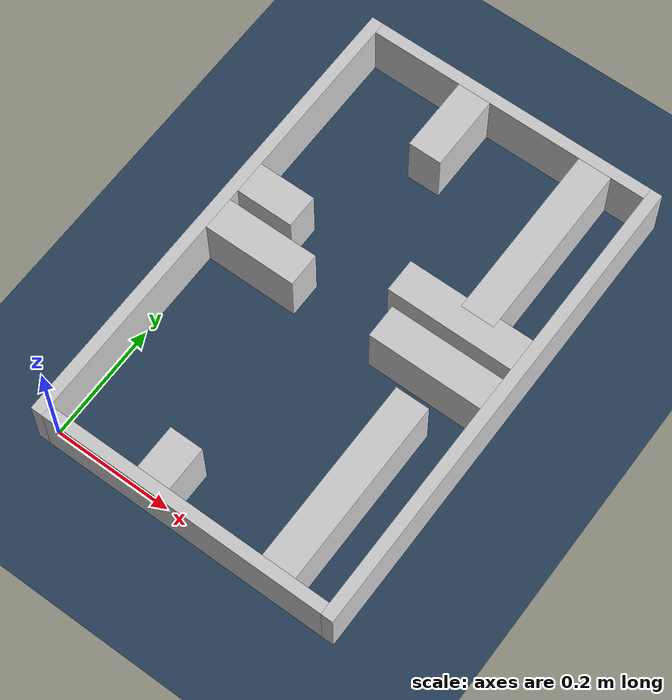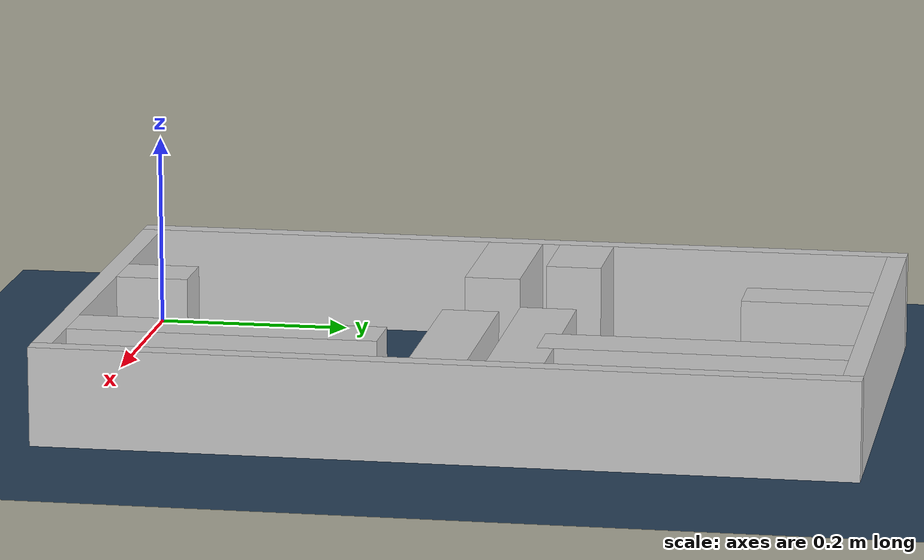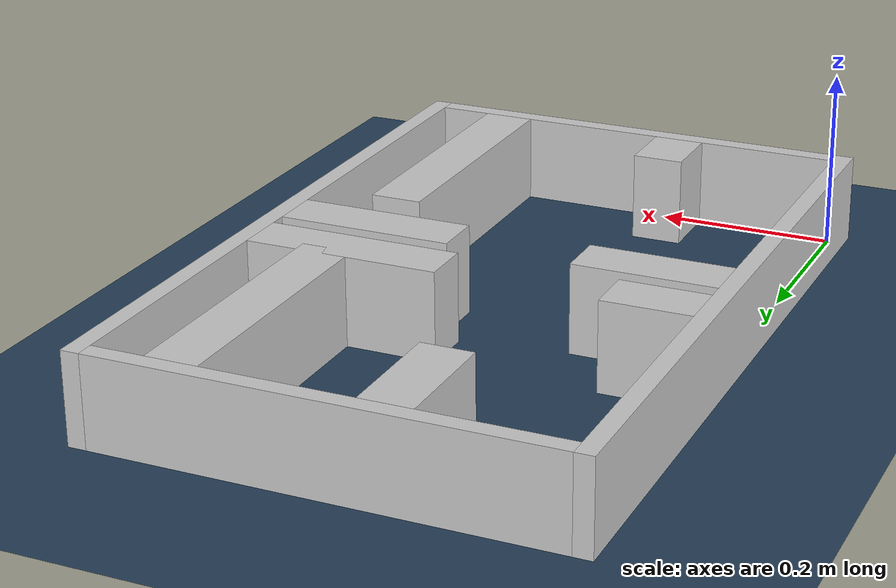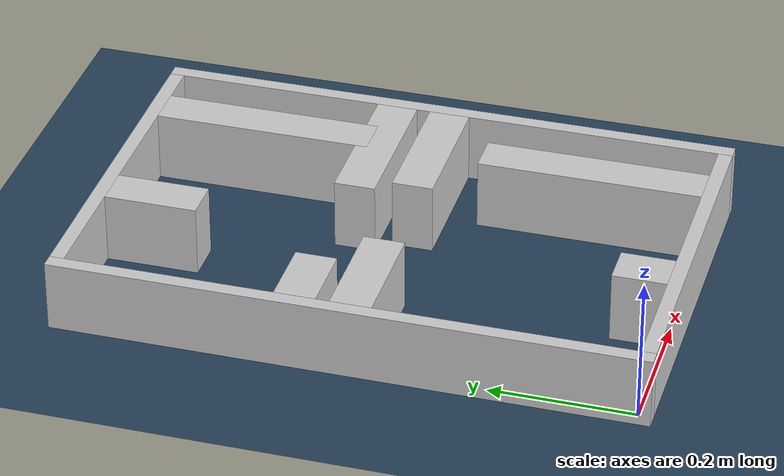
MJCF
<?xml version="1.0" ?>
<mujoco model="generated_real_template">
  <compiler angle="degree"/>
  <option timestep="0.002" integrator="implicitfast" iterations="100" cone="elliptic"/>
  <default>
    <geom density="1"/>
  </default>
  <asset>
    <texture builtin="gradient" height="3072" rgb1="0.3 0.5 0.7" rgb2="0 0 0" type="skybox" width="512"/>
    <texture builtin="checker" height="300" mark="edge" markrgb="0.8 0.8 0.8" name="groundplane" rgb1="0.2 0.3 0.4" rgb2="0.1 0.2 0.3" type="2d" width="300"/>
    <material name="groundplane" reflectance="0.2" texrepeat="5 5" texture="groundplane" texuniform="true"/>
  </asset>
  <worldbody>
    <light dir="0 0 -1" directional="true" pos="0 0 1.5"/>
    <geom name="floor" type="plane" condim="4" friction="0.5 0.005 0.001" material="groundplane" size="0 0 0.05"/>
    <body name="walls">
      <geom name="wall_boundary_left" type="box" condim="4" friction="1.0 0.005 0.0001" rgba="0.8 0.8 0.8 1" pos="-0.010000 0.387500 0.050000" euler="0 0 0.000000" size="0.010000 0.407500 0.050000"/>
      <geom name="wall_boundary_right" type="box" condim="4" friction="1.0 0.005 0.0001" rgba="0.8 0.8 0.8 1" pos="0.500000 0.387500 0.050000" euler="0 0 0.000000" size="0.010000 0.407500 0.050000"/>
      <geom name="wall_boundary_bottom" type="box" condim="4" friction="1.0 0.005 0.0001" rgba="0.8 0.8 0.8 1" pos="0.245000 -0.010000 0.050000" euler="0 0 0.000000" size="0.245000 0.010000 0.050000"/>
      <geom name="wall_boundary_top" type="box" condim="4" friction="1.0 0.005 0.0001" rgba="0.8 0.8 0.8 1" pos="0.245000 0.785000 0.050000" euler="0 0 0.000000" size="0.245000 0.010000 0.050000"/>
      <geom name="wall_inner_1_1" type="box" condim="4" friction="1.0 0.005 0.0001" rgba="0.8 0.8 0.8 1" pos="0.079074 0.382790 0.050000" euler="0 0 0.000000" size="0.079074 0.028500 0.050000"/>
      <geom name="wall_inner_1_2" type="box" condim="4" friction="1.0 0.005 0.0001" rgba="0.8 0.8 0.8 1" pos="0.392958 0.382790 0.050000" euler="0 0 0.000000" size="0.097042 0.028500 0.050000"/>
      <geom name="wall_inner_2_1" type="box" condim="4" friction="1.0 0.005 0.0001" rgba="0.8 0.8 0.8 1" pos="0.048938 0.458340 0.050000" euler="0 0 0.000000" size="0.048938 0.028500 0.050000"/>
      <geom name="wall_inner_2_2" type="box" condim="4" friction="1.0 0.005 0.0001" rgba="0.8 0.8 0.8 1" pos="0.382150 0.458340 0.050000" euler="0 0 0.000000" size="0.107850 0.028500 0.050000"/>
      <geom name="wall_inner_3_1" type="box" condim="4" friction="1.0 0.005 0.0001" rgba="0.8 0.8 0.8 1" pos="0.185189 0.037176 0.050000" euler="0 0 90.000000" size="0.037176 0.028500 0.050000"/>
      <geom name="wall_inner_3_2" type="box" condim="4" friction="1.0 0.005 0.0001" rgba="0.8 0.8 0.8 1" pos="0.185189 0.710385 0.050000" euler="0 0 90.000000" size="0.064615 0.028500 0.050000"/>
      <geom name="wall_inner_4_1" type="box" condim="4" friction="1.0 0.005 0.0001" rgba="0.8 0.8 0.8 1" pos="0.403719 0.156020 0.050000" euler="0 0 90.000000" size="0.156020 0.028500 0.050000"/>
      <geom name="wall_inner_4_2" type="box" condim="4" friction="1.0 0.005 0.0001" rgba="0.8 0.8 0.8 1" pos="0.403719 0.622741 0.050000" euler="0 0 90.000000" size="0.152259 0.028500 0.050000"/>
    </body>
  </worldbody>
</mujoco>
